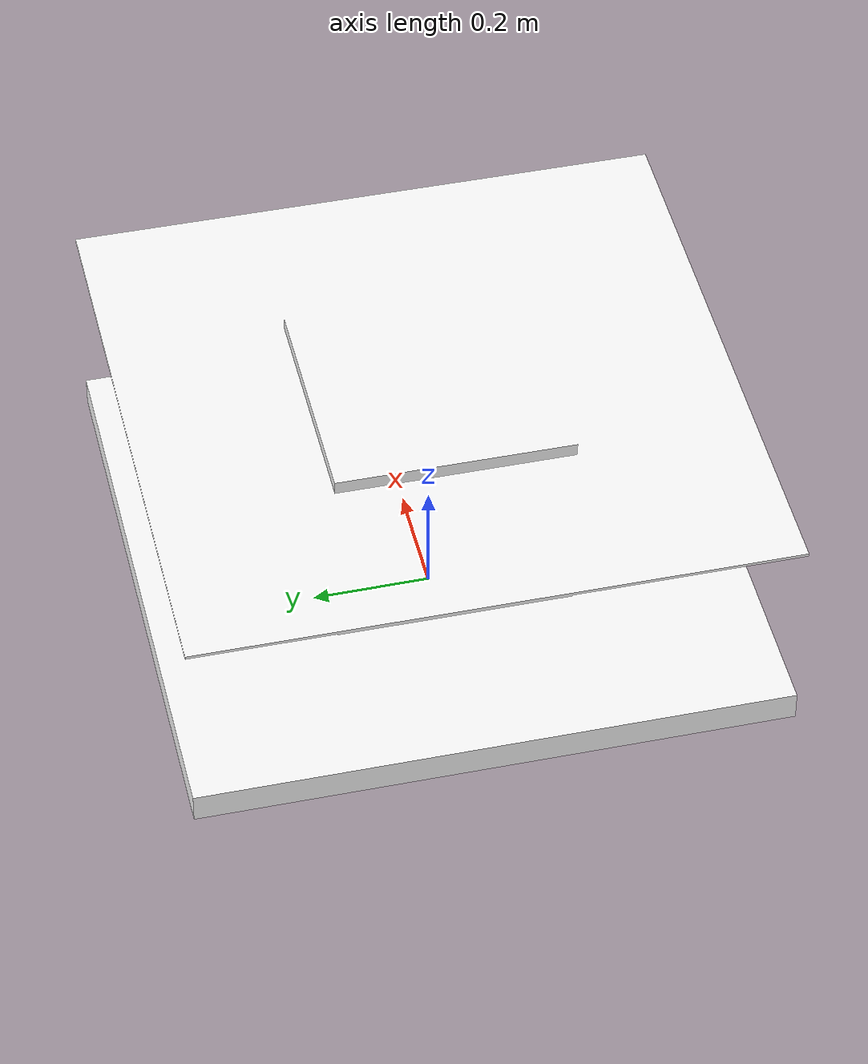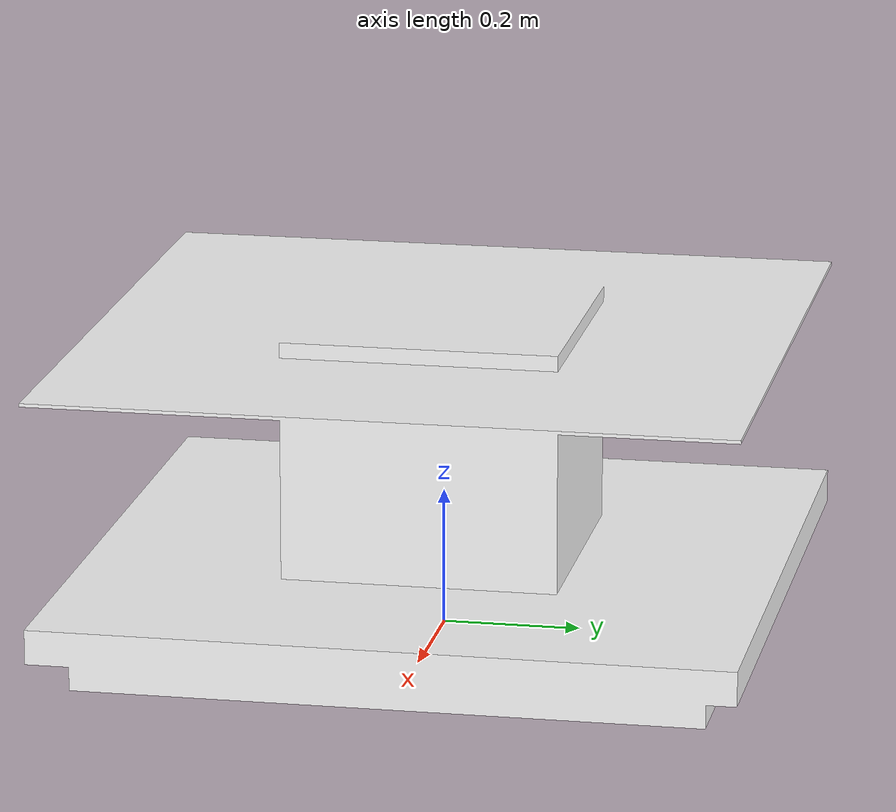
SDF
<?xml version="1.0" ?>
<sdf version="1.6">

  <!-- Model -->
  <model name="centro">
    <pose>0 0 0 0 0 0</pose>
    <static>true</static>

    <!-- Link -->
    <link name="link">
      <visual name="visual">
        <geometry>
          <mesh>
            <scale>1 1 1</scale>
            <uri>model://centro/meshes/centro.dae</uri>
          </mesh>
        </geometry>
        <material>
          <script>
            <uri>model://centro/materials/textures</uri>
            <uri>model://centro/materials/scripts</uri>
            <name>CentroTexture</name>
          </script>
          <ambient>1 1 1 1</ambient>
          <diffuse>1 1 1 1</diffuse>
          <specular>1 1 1 1</specular>
          <emissive>0 0 0 1</emissive>
        </material>
      </visual>

    </link>

  </model>
</sdf>
